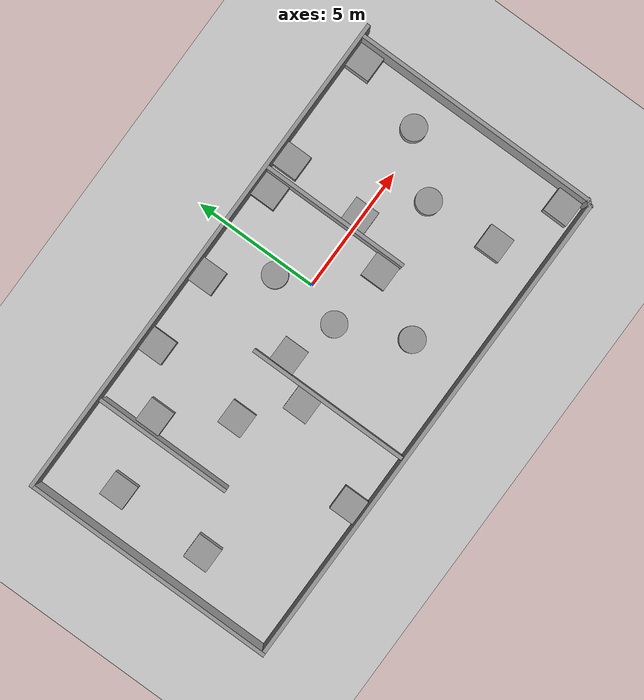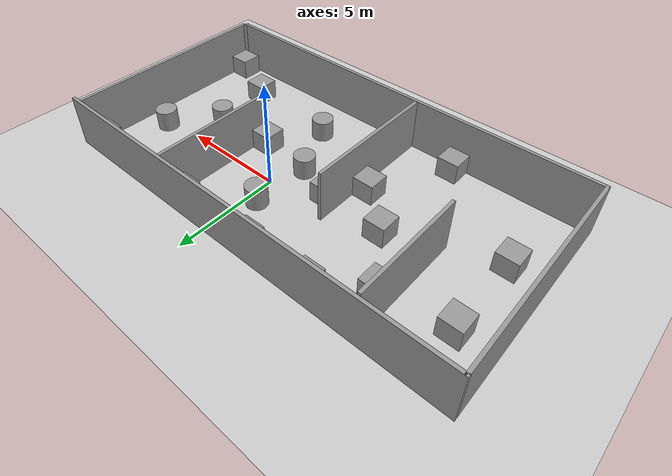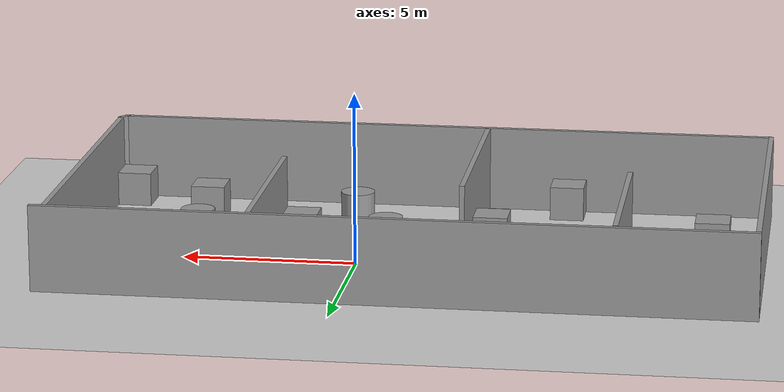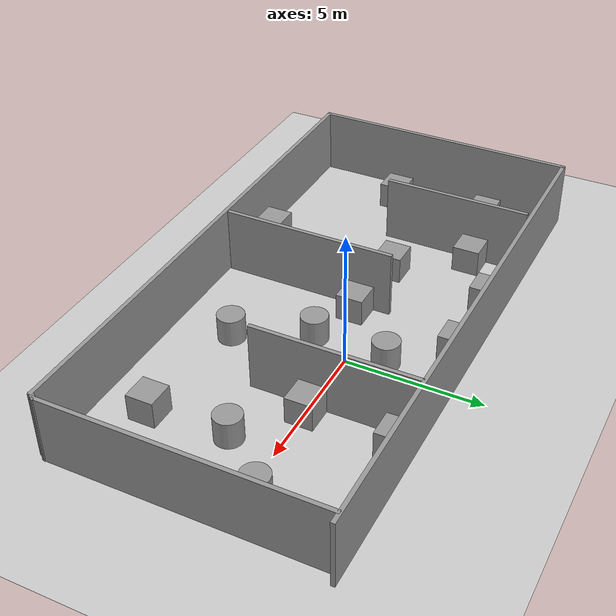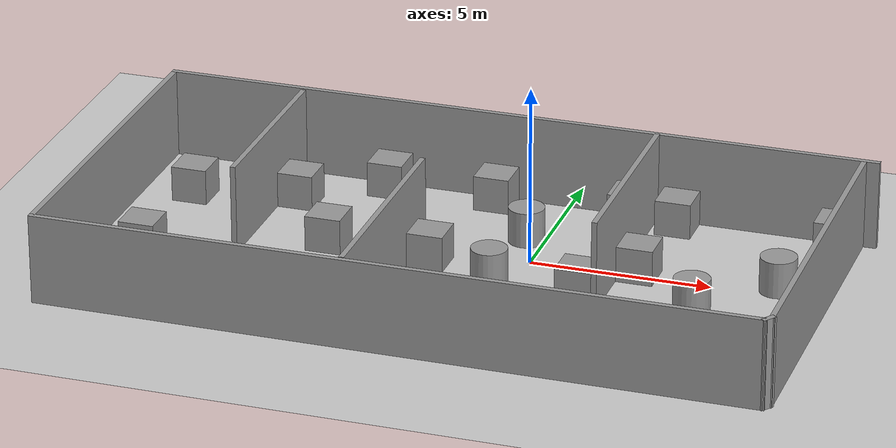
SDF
<sdf version="1.6">
 <world name="default">
  <light name="sun" type="directional">
   <pose>0 0 10 0 -0 0</pose>
   <diffuse>0.8 0.8 0.8 1</diffuse>
   <specular>0.2 0.2 0.2 1</specular>
   <attenuation>
    <range>1000</range>
    <constant>0.9</constant>
    <linear>0.01</linear>
    <quadratic>0.001</quadratic>
   </attenuation>
   <direction>-0.5 0.1 -0.9</direction>
  </light>
  <model name="ground_plane">
   <static>1</static>
   <link name="link">
    <collision name="collision">
     <geometry><plane><normal>0 0 1</normal><size>100 100</size></plane></geometry>
     <surface>
      <contact><collide_bitmask>65535</collide_bitmask></contact>
      <friction><ode><mu>100</mu><mu2>50</mu2></ode></friction>
     </surface>
    </collision>
    <visual name="visual">
     <cast_shadows>0</cast_shadows>
     <geometry><plane><normal>0 0 1</normal><size>100 100</size></plane></geometry>
     <material>
      <script><uri>file://media/materials/scripts/gazebo.material</uri><name>Gazebo/Grey</name></script>
     </material>
    </visual>
   </link>
  </model>
  <gravity>0 0 -9.8</gravity>
  <magnetic_field>6e-06 2.3e-05 -4.2e-05</magnetic_field>
  <atmosphere type="adiabatic"/>
  <physics name="default_physics" default="0" type="ode">
   <max_step_size>0.001</max_step_size>
   <real_time_factor>1</real_time_factor>
   <real_time_update_rate>1000</real_time_update_rate>
  </physics>
  <scene><ambient>0.4 0.4 0.4 1</ambient><background>0.7 0.7 0.7 1</background><shadows>1</shadows></scene>
  <spherical_coordinates>
   <surface_model>EARTH_WGS84</surface_model>
   <latitude_deg>0</latitude_deg>
   <longitude_deg>0</longitude_deg>
   <elevation>0</elevation>
   <heading_deg>0</heading_deg>
  </spherical_coordinates>
  <model name="maze3">
   <pose>-1.53747 -1.28648 0 0 -0 0</pose>
   <link name="Wall_0">
    <collision name="Wall_0_Collision">
     <geometry><box><size>20.25 0.15 2.5</size></box></geometry>
     <pose>0 0 1.25 0 -0 0</pose>
    </collision>
    <visual name="Wall_0_Visual">
     <pose>0 0 1.25 0 -0 0</pose>
     <geometry><box><size>20.25 0.15 2.5</size></box></geometry>
     <material>
      <script><uri>file://media/materials/scripts/gazebo.material</uri><name>Gazebo/Grey</name></script>
      <ambient>1 1 1 1</ambient>
     </material>
     <meta><layer>0</layer></meta>
    </visual>
    <pose>1e-06 5.06494 0 0 -0 3.14159</pose>
   </link>
   <link name="Wall_1">
    <collision name="Wall_1_Collision">
     <geometry><box><size>10.25 0.15 2.5</size></box></geometry>
     <pose>0 0 1.25 0 -0 0</pose>
    </collision>
    <visual name="Wall_1_Visual">
     <pose>0 0 1.25 0 -0 0</pose>
     <geometry><box><size>10.25 0.15 2.5</size></box></geometry>
     <material>
      <script><uri>file://media/materials/scripts/gazebo.material</uri><name>Gazebo/Grey</name></script>
      <ambient>1 1 1 1</ambient>
     </material>
     <meta><layer>0</layer></meta>
    </visual>
    <pose>-10.05 0.014941 0 0 -0 -1.5708</pose>
   </link>
   <link name="Wall_11">
    <collision name="Wall_11_Collision">
     <geometry><box><size>5.5 0.15 2.5</size></box></geometry>
     <pose>0 0 1.25 0 -0 0</pose>
    </collision>
    <visual name="Wall_11_Visual">
     <pose>0 0 1.25 0 -0 0</pose>
     <geometry><box><size>5.5 0.15 2.5</size></box></geometry>
     <material>
      <script><uri>file://media/materials/scripts/gazebo.material</uri><name>Gazebo/Grey</name></script>
      <ambient>1 1 1 1</ambient>
     </material>
     <meta><layer>0</layer></meta>
    </visual>
    <pose>-6.17162 2.16203 0 0 -0 1.5708</pose>
   </link>
   <link name="Wall_13">
    <collision name="Wall_13_Collision">
     <geometry><box><size>6.5 0.15 2.5</size></box></geometry>
     <pose>0 0 1.25 0 -0 0</pose>
    </collision>
    <visual name="Wall_13_Visual">
     <pose>0 0 1.25 0 -0 0</pose>
     <geometry><box><size>6.5 0.15 2.5</size></box></geometry>
     <material>
      <script><uri>file://media/materials/scripts/gazebo.material</uri><name>Gazebo/Grey</name></script>
      <ambient>1 1 1 1</ambient>
     </material>
     <meta><layer>0</layer></meta>
    </visual>
    <pose>-1.5632 -1.68278 0 0 -0 -1.5708</pose>
   </link>
   <link name="Wall_15">
    <collision name="Wall_15_Collision">
     <geometry><box><size>6 0.15 2.5</size></box></geometry>
     <pose>0 0 1.25 0 -0 0</pose>
    </collision>
    <visual name="Wall_15_Visual">
     <pose>0 0 1.25 0 -0 0</pose>
     <geometry><box><size>6 0.15 2.5</size></box></geometry>
     <material>
      <script><uri>file://media/materials/scripts/gazebo.material</uri><name>Gazebo/Grey</name></script>
      <ambient>1 1 1 1</ambient>
     </material>
     <meta><layer>0</layer></meta>
    </visual>
    <pose>3.95986 2.04992 0 0 -0 -1.5708</pose>
   </link>
   <link name="Wall_5">
    <collision name="Wall_5_Collision">
     <geometry><box><size>10 0.15 2.5</size></box></geometry>
     <pose>0 0 1.25 0 -0 0</pose>
    </collision>
    <visual name="Wall_5_Visual">
     <pose>0 0 1.25 0 -0 0</pose>
     <geometry><box><size>10 0.15 2.5</size></box></geometry>
     <material>
      <script><uri>file://media/materials/scripts/gazebo.material</uri><name>Gazebo/Grey</name></script>
      <ambient>1 1 1 1</ambient>
     </material>
     <meta><layer>0</layer></meta>
    </visual>
    <pose>9.694 0.085041 0 0 -0 1.5708</pose>
   </link>
   <link name="Wall_8">
    <collision name="Wall_8_Collision">
     <geometry><box><size>19.75 0.15 2.5</size></box></geometry>
     <pose>0 0 1.25 0 -0 0</pose>
    </collision>
    <visual name="Wall_8_Visual">
     <pose>0 0 1.25 0 -0 0</pose>
     <geometry><box><size>19.75 0.15 2.5</size></box></geometry>
     <material>
      <script><uri>file://media/materials/scripts/gazebo.material</uri><name>Gazebo/Grey</name></script>
      <ambient>1 1 1 1</ambient>
     </material>
     <meta><layer>0</layer></meta>
    </visual>
    <pose>-0.249999 -5.03506 0 0 -0 0</pose>
   </link>
   <link name="Wall_9">
    <collision name="Wall_9_Collision">
     <geometry><box><size>0.392487 0.15 2.5</size></box></geometry>
     <pose>0 0 1.25 0 -0 0</pose>
    </collision>
    <visual name="Wall_9_Visual">
     <pose>0 0 1.25 0 -0 0</pose>
     <geometry><box><size>0.392487 0.15 2.5</size></box></geometry>
     <material>
      <script><uri>file://media/materials/scripts/gazebo.material</uri><name>Gazebo/Grey</name></script>
      <ambient>1 1 1 1</ambient>
     </material>
     <meta><layer>0</layer></meta>
    </visual>
    <pose>9.622 -4.93751 0 0 -0 0.934971</pose>
   </link>
   <static>1</static>
  </model>
  <model name="unit_box">
   <pose>-10.0374 1.23479 0.499995 0 1e-05 0</pose>
   <link name="link">
    <inertial>
     <mass>1</mass>
     <inertia>
      <ixx>0.166667</ixx>
      <ixy>0</ixy>
      <ixz>0</ixz>
      <iyy>0.166667</iyy>
      <iyz>0</iyz>
      <izz>0.166667</izz>
     </inertia>
    </inertial>
    <collision name="collision"><geometry><box><size>1 1 1</size></box></geometry></collision>
    <visual name="visual">
     <geometry><box><size>1 1 1</size></box></geometry>
     <material>
      <script><name>Gazebo/Grey</name><uri>file://media/materials/scripts/gazebo.material</uri></script>
     </material>
    </visual>
   </link>
  </model>
  <model name="unit_box_0">
   <pose>-10.0805 -2.52183 0.499995 -1e-05 -0 -0</pose>
   <link name="link">
    <inertial>
     <mass>1</mass>
     <inertia>
      <ixx>0.166667</ixx>
      <ixy>0</ixy>
      <ixz>0</ixz>
      <iyy>0.166667</iyy>
      <iyz>0</iyz>
      <izz>0.166667</izz>
     </inertia>
    </inertial>
    <collision name="collision"><geometry><box><size>1 1 1</size></box></geometry></collision>
    <visual name="visual">
     <geometry><box><size>1 1 1</size></box></geometry>
     <material>
      <script><name>Gazebo/Grey</name><uri>file://media/materials/scripts/gazebo.material</uri></script>
     </material>
    </visual>
   </link>
  </model>
  <model name="unit_box_1">
   <pose>-5.58988 -5.74654 0.5 0 -0 0</pose>
   <link name="link">
    <inertial>
     <mass>1</mass>
     <inertia>
      <ixx>0.166667</ixx>
      <ixy>0</ixy>
      <ixz>0</ixz>
      <iyy>0.166667</iyy>
      <iyz>0</iyz>
      <izz>0.166667</izz>
     </inertia>
    </inertial>
    <collision name="collision"><geometry><box><size>1 1 1</size></box></geometry></collision>
    <visual name="visual">
     <geometry><box><size>1 1 1</size></box></geometry>
     <material>
      <script><name>Gazebo/Grey</name><uri>file://media/materials/scripts/gazebo.material</uri></script>
     </material>
    </visual>
   </link>
  </model>
  <model name="unit_box_2">
   <pose>-3.67567 -2.26283 0.5 -0 -0 -5e-06</pose>
   <link name="link">
    <inertial>
     <mass>1</mass>
     <inertia>
      <ixx>0.166667</ixx>
      <ixy>0</ixy>
      <ixz>0</ixz>
      <iyy>0.166667</iyy>
      <iyz>0</iyz>
      <izz>0.166667</izz>
     </inertia>
    </inertial>
    <collision name="collision"><geometry><box><size>1 1 1</size></box></geometry></collision>
    <visual name="visual">
     <geometry><box><size>1 1 1</size></box></geometry>
     <material>
      <script><name>Gazebo/Grey</name><uri>file://media/materials/scripts/gazebo.material</uri></script>
     </material>
    </visual>
   </link>
  </model>
  <model name="unit_box_3">
   <pose>-7.13409 1.75294 0.5 0 -0 0</pose>
   <link name="link">
    <inertial>
     <mass>1</mass>
     <inertia>
      <ixx>0.166667</ixx>
      <ixy>0</ixy>
      <ixz>0</ixz>
      <iyy>0.166667</iyy>
      <iyz>0</iyz>
      <izz>0.166667</izz>
     </inertia>
    </inertial>
    <collision name="collision"><geometry><box><size>1 1 1</size></box></geometry></collision>
    <visual name="visual">
     <geometry><box><size>1 1 1</size></box></geometry>
     <material>
      <script><name>Gazebo/Grey</name><uri>file://media/materials/scripts/gazebo.material</uri></script>
     </material>
    </visual>
   </link>
  </model>
  <model name="unit_box_4">
   <pose>-5.46031 -0.66509 0.499995 -1e-05 -0 -0</pose>
   <link name="link">
    <inertial>
     <mass>1</mass>
     <inertia>
      <ixx>0.166667</ixx>
      <ixy>0</ixy>
      <ixz>0</ixz>
      <iyy>0.166667</iyy>
      <iyz>0</iyz>
      <izz>0.166667</izz>
     </inertia>
    </inertial>
    <collision name="collision"><geometry><box><size>1 1 1</size></box></geometry></collision>
    <visual name="visual">
     <geometry><box><size>1 1 1</size></box></geometry>
     <material>
      <script><name>Gazebo/Grey</name><uri>file://media/materials/scripts/gazebo.material</uri></script>
     </material>
    </visual>
   </link>
  </model>
  <model name="unit_box_5">
   <pose>1.83693 3.20345 0.5 0 -0 2e-06</pose>
   <link name="link">
    <inertial>
     <mass>1</mass>
     <inertia>
      <ixx>0.166667</ixx>
      <ixy>0</ixy>
      <ixz>0</ixz>
      <iyy>0.166667</iyy>
      <iyz>0</iyz>
      <izz>0.166667</izz>
     </inertia>
    </inertial>
    <collision name="collision"><geometry><box><size>1 1 1</size></box></geometry></collision>
    <visual name="visual">
     <geometry><box><size>1 1 1</size></box></geometry>
     <material>
      <script><name>Gazebo/Grey</name><uri>file://media/materials/scripts/gazebo.material</uri></script>
     </material>
    </visual>
   </link>
  </model>
  <model name="unit_box_6">
   <pose>1.83693 -1.70125 0.499995 -1e-05 -0 -0</pose>
   <link name="link">
    <inertial>
     <mass>1</mass>
     <inertia>
      <ixx>0.166667</ixx>
      <ixy>0</ixy>
      <ixz>0</ixz>
      <iyy>0.166667</iyy>
      <iyz>0</iyz>
      <izz>0.166667</izz>
     </inertia>
    </inertial>
    <collision name="collision"><geometry><box><size>1 1 1</size></box></geometry></collision>
    <visual name="visual">
     <geometry><box><size>1 1 1</size></box></geometry>
     <material>
      <script><name>Gazebo/Grey</name><uri>file://media/materials/scripts/gazebo.material</uri></script>
     </material>
    </visual>
   </link>
  </model>
  <model name="unit_box_7">
   <pose>-2.52413 -0.837811 0.499995 0 1e-05 0</pose>
   <link name="link">
    <inertial>
     <mass>1</mass>
     <inertia>
      <ixx>0.166667</ixx>
      <ixy>0</ixy>
      <ixz>0</ixz>
      <iyy>0.166667</iyy>
      <iyz>0</iyz>
      <izz>0.166667</izz>
     </inertia>
    </inertial>
    <collision name="collision"><geometry><box><size>1 1 1</size></box></geometry></collision>
    <visual name="visual">
     <geometry><box><size>1 1 1</size></box></geometry>
     <material>
      <script><name>Gazebo/Grey</name><uri>file://media/materials/scripts/gazebo.material</uri></script>
     </material>
    </visual>
   </link>
  </model>
  <model name="unit_cylinder">
   <pose>-0.66739 -1.48553 0.499998 3e-06 -3e-06 0</pose>
   <link name="link">
    <inertial>
     <mass>1</mass>
     <inertia><ixx>0.145833</ixx><ixy>0</ixy><ixz>0</ixz><iyy>0.145833</iyy><iyz>0</iyz><izz>0.125</izz></inertia>
    </inertial>
    <collision name="collision">
     <geometry><cylinder><radius>0.5</radius><length>1</length></cylinder></geometry>
    </collision>
    <visual name="visual">
     <geometry><cylinder><radius>0.5</radius><length>1</length></cylinder></geometry>
     <material>
      <script><name>Gazebo/Grey</name><uri>file://media/materials/scripts/gazebo.material</uri></script>
     </material>
    </visual>
   </link>
  </model>
  <model name="unit_cylinder_0">
   <pose>0.541629 -4.07628 0.499992 -3e-06 3e-06 0</pose>
   <link name="link">
    <inertial>
     <mass>1</mass>
     <inertia><ixx>0.145833</ixx><ixy>0</ixy><ixz>0</ixz><iyy>0.145833</iyy><iyz>0</iyz><izz>0.125</izz></inertia>
    </inertial>
    <collision name="collision">
     <geometry><cylinder><radius>0.5</radius><length>1</length></cylinder></geometry>
    </collision>
    <visual name="visual">
     <geometry><cylinder><radius>0.5</radius><length>1</length></cylinder></geometry>
     <material>
      <script><name>Gazebo/Grey</name><uri>file://media/materials/scripts/gazebo.material</uri></script>
     </material>
    </visual>
   </link>
  </model>
  <model name="unit_box_8">
   <pose>-1.96283 3.20346 0.5 0 -0 1e-06</pose>
   <link name="link">
    <inertial>
     <mass>1</mass>
     <inertia>
      <ixx>0.166667</ixx>
      <ixy>0</ixy>
      <ixz>0</ixz>
      <iyy>0.166667</iyy>
      <iyz>0</iyz>
      <izz>0.166667</izz>
     </inertia>
    </inertial>
    <collision name="collision"><geometry><box><size>1 1 1</size></box></geometry></collision>
    <visual name="visual">
     <geometry><box><size>1 1 1</size></box></geometry>
     <material>
      <script><name>Gazebo/Grey</name><uri>file://media/materials/scripts/gazebo.material</uri></script>
     </material>
    </visual>
   </link>
  </model>
  <model name="unit_box_9">
   <pose>-5.02858 3.17782 0.499995 0 1e-05 0</pose>
   <link name="link">
    <inertial>
     <mass>1</mass>
     <inertia>
      <ixx>0.166667</ixx>
      <ixy>0</ixy>
      <ixz>0</ixz>
      <iyy>0.166667</iyy>
      <iyz>0</iyz>
      <izz>0.166667</izz>
     </inertia>
    </inertial>
    <collision name="collision"><geometry><box><size>1 1 1</size></box></geometry></collision>
    <visual name="visual">
     <geometry><box><size>1 1 1</size></box></geometry>
     <material>
      <script><name>Gazebo/Grey</name><uri>file://media/materials/scripts/gazebo.material</uri></script>
     </material>
    </visual>
   </link>
  </model>
  <model name="unit_cylinder_1">
   <pose>-0.494675 1.27807 0.499998 3e-06 -4e-06 0</pose>
   <link name="link">
    <inertial>
     <mass>1</mass>
     <inertia><ixx>0.145833</ixx><ixy>0</ixy><ixz>0</ixz><iyy>0.145833</iyy><iyz>0</iyz><izz>0.125</izz></inertia>
    </inertial>
    <collision name="collision">
     <geometry><cylinder><radius>0.5</radius><length>1</length></cylinder></geometry>
    </collision>
    <visual name="visual">
     <geometry><cylinder><radius>0.5</radius><length>1</length></cylinder></geometry>
     <material>
      <script><name>Gazebo/Grey</name><uri>file://media/materials/scripts/gazebo.material</uri></script>
     </material>
    </visual>
   </link>
  </model>
  <model name="unit_box_10">
   <pose>7.57696 3.18961 0.499995 0 -1e-05 -0.000237</pose>
   <link name="link">
    <inertial>
     <mass>1</mass>
     <inertia>
      <ixx>0.166667</ixx>
      <ixy>0</ixy>
      <ixz>0</ixz>
      <iyy>0.166667</iyy>
      <iyz>0</iyz>
      <izz>0.166667</izz>
     </inertia>
    </inertial>
    <collision name="collision"><geometry><box><size>1 1 1</size></box></geometry></collision>
    <visual name="visual">
     <geometry><box><size>1 1 1</size></box></geometry>
     <material>
      <script><name>Gazebo/Grey</name><uri>file://media/materials/scripts/gazebo.material</uri></script>
     </material>
    </visual>
   </link>
  </model>
  <model name="unit_box_11">
   <pose>3.17552 3.20345 0.5 0 -0 1e-06</pose>
   <link name="link">
    <inertial>
     <mass>1</mass>
     <inertia>
      <ixx>0.166667</ixx>
      <ixy>0</ixy>
      <ixz>0</ixz>
      <iyy>0.166667</iyy>
      <iyz>0</iyz>
      <izz>0.166667</izz>
     </inertia>
    </inertial>
    <collision name="collision"><geometry><box><size>1 1 1</size></box></geometry></collision>
    <visual name="visual">
     <geometry><box><size>1 1 1</size></box></geometry>
     <material>
      <script><name>Gazebo/Grey</name><uri>file://media/materials/scripts/gazebo.material</uri></script>
     </material>
    </visual>
   </link>
  </model>
  <model name="unit_box_12">
   <pose>7.56772 -5.62261 0.499995 1e-05 0 -0.012044</pose>
   <link name="link">
    <inertial>
     <mass>1</mass>
     <inertia>
      <ixx>0.166667</ixx>
      <ixy>0</ixy>
      <ixz>0</ixz>
      <iyy>0.166667</iyy>
      <iyz>0</iyz>
      <izz>0.166667</izz>
     </inertia>
    </inertial>
    <collision name="collision"><geometry><box><size>1 1 1</size></box></geometry></collision>
    <visual name="visual">
     <geometry><box><size>1 1 1</size></box></geometry>
     <material>
      <script><name>Gazebo/Grey</name><uri>file://media/materials/scripts/gazebo.material</uri></script>
     </material>
    </visual>
   </link>
  </model>
  <model name="unit_cylinder_2">
   <pose>6.71621 0.371207 0.499993 -3e-06 -3e-06 0</pose>
   <link name="link">
    <inertial>
     <mass>1</mass>
     <inertia><ixx>0.145833</ixx><ixy>0</ixy><ixz>0</ixz><iyy>0.145833</iyy><iyz>0</iyz><izz>0.125</izz></inertia>
    </inertial>
    <collision name="collision">
     <geometry><cylinder><radius>0.5</radius><length>1</length></cylinder></geometry>
    </collision>
    <visual name="visual">
     <geometry><cylinder><radius>0.5</radius><length>1</length></cylinder></geometry>
     <material>
      <script><name>Gazebo/Grey</name><uri>file://media/materials/scripts/gazebo.material</uri></script>
     </material>
    </visual>
   </link>
  </model>
  <model name="unit_box_13">
   <pose>3.0028 0.068916 0.499995 0 1e-05 0</pose>
   <link name="link">
    <inertial>
     <mass>1</mass>
     <inertia>
      <ixx>0.166667</ixx>
      <ixy>0</ixy>
      <ixz>0</ixz>
      <iyy>0.166667</iyy>
      <iyz>0</iyz>
      <izz>0.166667</izz>
     </inertia>
    </inertial>
    <collision name="collision"><geometry><box><size>1 1 1</size></box></geometry></collision>
    <visual name="visual">
     <geometry><box><size>1 1 1</size></box></geometry>
     <material>
      <script><name>Gazebo/Grey</name><uri>file://media/materials/scripts/gazebo.material</uri></script>
     </material>
    </visual>
   </link>
  </model>
  <model name="unit_cylinder_3">
   <pose>4.90262 -1.61511 0.499993 -3e-06 -4e-06 -0</pose>
   <link name="link">
    <inertial>
     <mass>1</mass>
     <inertia><ixx>0.145833</ixx><ixy>0</ixy><ixz>0</ixz><iyy>0.145833</iyy><iyz>0</iyz><izz>0.125</izz></inertia>
    </inertial>
    <collision name="collision">
     <geometry><cylinder><radius>0.5</radius><length>1</length></cylinder></geometry>
    </collision>
    <visual name="visual">
     <geometry><cylinder><radius>0.5</radius><length>1</length></cylinder></geometry>
     <material>
      <script><name>Gazebo/Grey</name><uri>file://media/materials/scripts/gazebo.material</uri></script>
     </material>
    </visual>
   </link>
  </model>
  <model name="unit_box_14">
   <pose>5.0754 -4.42185 0.5 0 -0 0</pose>
   <link name="link">
    <inertial>
     <mass>1</mass>
     <inertia>
      <ixx>0.166667</ixx>
      <ixy>0</ixy>
      <ixz>0</ixz>
      <iyy>0.166667</iyy>
      <iyz>0</iyz>
      <izz>0.166667</izz>
     </inertia>
    </inertial>
    <collision name="collision"><geometry><box><size>1 1 1</size></box></geometry></collision>
    <visual name="visual">
     <geometry><box><size>1 1 1</size></box></geometry>
     <material>
      <script><name>Gazebo/Grey</name><uri>file://media/materials/scripts/gazebo.material</uri></script>
     </material>
    </visual>
   </link>
  </model>
 </world>
</sdf>
